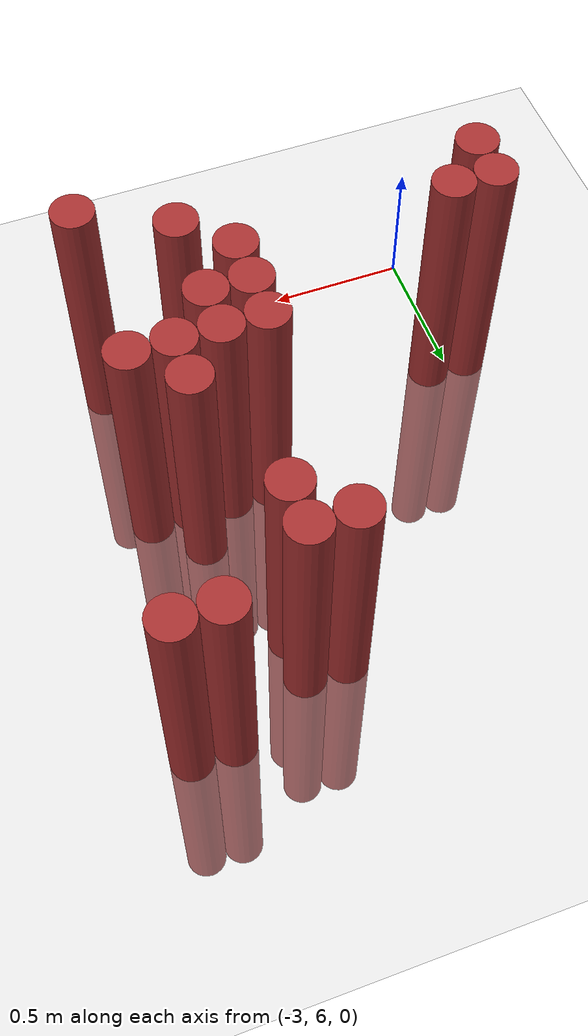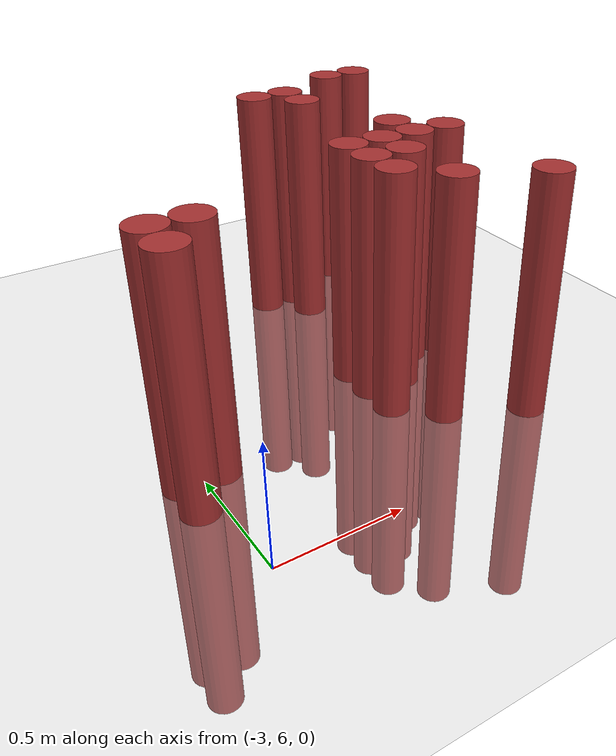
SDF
<sdf version="1.6">
 <world name="default">
  <model name="ground_plane">
   <static>1</static>
   <link name="link">
    <collision name="collision">
     <geometry><plane><normal>0 0 1</normal><size>100 100</size></plane></geometry>
     <surface><friction><ode><mu>100</mu><mu2>50</mu2></ode></friction></surface>
    </collision>
    <visual name="visual">
     <cast_shadows>0</cast_shadows>
     <geometry><plane><normal>0 0 1</normal><size>100 100</size></plane></geometry>
     <material>
      <script><uri>file://media/materials/scripts/gazebo.material</uri><name>Gazebo/Grey</name></script>
     </material>
    </visual>
   </link>
  </model>
  <model name="unit_cylinder_149">
   <static>1</static>
   <pose>-3.075000 6.375000 0.000000 0.000000 0.000000 0.000000</pose>
   <link name="link">
    <inertial>
     <mass>1</mass>
     <inertia><ixx>0.145833</ixx><ixy>0</ixy><ixz>0</ixz><iyy>0.145833</iyy><iyz>0</iyz><izz>0.125</izz></inertia>
    </inertial>
    <collision name="collision">
     <geometry><cylinder><radius>0.075000</radius><length>2</length></cylinder></geometry>
    </collision>
    <visual name="visual">
     <geometry><cylinder><radius>0.075000</radius><length>2</length></cylinder></geometry>
     <material>
      <ambient>0.648000 0.192000 0.192000 1</ambient>
      <diffuse>0.648000 0.192000 0.192000 1</diffuse>
     </material>
     <material>
      <script><name>Gazebo/Grey</name><uri>file://media/materials/scripts/gazebo.material</uri></script>
     </material>
    </visual>
   </link>
  </model>
  <model name="unit_cylinder_150">
   <static>1</static>
   <pose>-3.075000 6.525000 0.000000 0.000000 0.000000 0.000000</pose>
   <link name="link">
    <inertial>
     <mass>1</mass>
     <inertia><ixx>0.145833</ixx><ixy>0</ixy><ixz>0</ixz><iyy>0.145833</iyy><iyz>0</iyz><izz>0.125</izz></inertia>
    </inertial>
    <collision name="collision">
     <geometry><cylinder><radius>0.075000</radius><length>2</length></cylinder></geometry>
    </collision>
    <visual name="visual">
     <geometry><cylinder><radius>0.075000</radius><length>2</length></cylinder></geometry>
     <material>
      <ambient>0.648000 0.192000 0.192000 1</ambient>
      <diffuse>0.648000 0.192000 0.192000 1</diffuse>
     </material>
     <material>
      <script><name>Gazebo/Grey</name><uri>file://media/materials/scripts/gazebo.material</uri></script>
     </material>
    </visual>
   </link>
  </model>
  <model name="unit_cylinder_151">
   <static>1</static>
   <pose>-2.925000 6.525000 0.000000 0.000000 0.000000 0.000000</pose>
   <link name="link">
    <inertial>
     <mass>1</mass>
     <inertia><ixx>0.145833</ixx><ixy>0</ixy><ixz>0</ixz><iyy>0.145833</iyy><iyz>0</iyz><izz>0.125</izz></inertia>
    </inertial>
    <collision name="collision">
     <geometry><cylinder><radius>0.075000</radius><length>2</length></cylinder></geometry>
    </collision>
    <visual name="visual">
     <geometry><cylinder><radius>0.075000</radius><length>2</length></cylinder></geometry>
     <material>
      <ambient>0.648000 0.192000 0.192000 1</ambient>
      <diffuse>0.648000 0.192000 0.192000 1</diffuse>
     </material>
     <material>
      <script><name>Gazebo/Grey</name><uri>file://media/materials/scripts/gazebo.material</uri></script>
     </material>
    </visual>
   </link>
  </model>
  <model name="unit_cylinder_153">
   <static>1</static>
   <pose>-2.175000 6.525000 0.000000 0.000000 0.000000 0.000000</pose>
   <link name="link">
    <inertial>
     <mass>1</mass>
     <inertia><ixx>0.145833</ixx><ixy>0</ixy><ixz>0</ixz><iyy>0.145833</iyy><iyz>0</iyz><izz>0.125</izz></inertia>
    </inertial>
    <collision name="collision">
     <geometry><cylinder><radius>0.075000</radius><length>2</length></cylinder></geometry>
    </collision>
    <visual name="visual">
     <geometry><cylinder><radius>0.075000</radius><length>2</length></cylinder></geometry>
     <material>
      <ambient>0.648000 0.192000 0.192000 1</ambient>
      <diffuse>0.648000 0.192000 0.192000 1</diffuse>
     </material>
     <material>
      <script><name>Gazebo/Grey</name><uri>file://media/materials/scripts/gazebo.material</uri></script>
     </material>
    </visual>
   </link>
  </model>
  <model name="unit_cylinder_154">
   <static>1</static>
   <pose>-2.175000 6.675000 0.000000 0.000000 0.000000 0.000000</pose>
   <link name="link">
    <inertial>
     <mass>1</mass>
     <inertia><ixx>0.145833</ixx><ixy>0</ixy><ixz>0</ixz><iyy>0.145833</iyy><iyz>0</iyz><izz>0.125</izz></inertia>
    </inertial>
    <collision name="collision">
     <geometry><cylinder><radius>0.075000</radius><length>2</length></cylinder></geometry>
    </collision>
    <visual name="visual">
     <geometry><cylinder><radius>0.075000</radius><length>2</length></cylinder></geometry>
     <material>
      <ambient>0.648000 0.192000 0.192000 1</ambient>
      <diffuse>0.648000 0.192000 0.192000 1</diffuse>
     </material>
     <material>
      <script><name>Gazebo/Grey</name><uri>file://media/materials/scripts/gazebo.material</uri></script>
     </material>
    </visual>
   </link>
  </model>
  <model name="unit_cylinder_155">
   <static>1</static>
   <pose>-2.175000 6.825000 0.000000 0.000000 0.000000 0.000000</pose>
   <link name="link">
    <inertial>
     <mass>1</mass>
     <inertia><ixx>0.145833</ixx><ixy>0</ixy><ixz>0</ixz><iyy>0.145833</iyy><iyz>0</iyz><izz>0.125</izz></inertia>
    </inertial>
    <collision name="collision">
     <geometry><cylinder><radius>0.075000</radius><length>2</length></cylinder></geometry>
    </collision>
    <visual name="visual">
     <geometry><cylinder><radius>0.075000</radius><length>2</length></cylinder></geometry>
     <material>
      <ambient>0.648000 0.192000 0.192000 1</ambient>
      <diffuse>0.648000 0.192000 0.192000 1</diffuse>
     </material>
     <material>
      <script><name>Gazebo/Grey</name><uri>file://media/materials/scripts/gazebo.material</uri></script>
     </material>
    </visual>
   </link>
  </model>
  <model name="unit_cylinder_156">
   <static>1</static>
   <pose>-2.175000 7.575000 0.000000 0.000000 0.000000 0.000000</pose>
   <link name="link">
    <inertial>
     <mass>1</mass>
     <inertia><ixx>0.145833</ixx><ixy>0</ixy><ixz>0</ixz><iyy>0.145833</iyy><iyz>0</iyz><izz>0.125</izz></inertia>
    </inertial>
    <collision name="collision">
     <geometry><cylinder><radius>0.075000</radius><length>2</length></cylinder></geometry>
    </collision>
    <visual name="visual">
     <geometry><cylinder><radius>0.075000</radius><length>2</length></cylinder></geometry>
     <material>
      <ambient>0.648000 0.192000 0.192000 1</ambient>
      <diffuse>0.648000 0.192000 0.192000 1</diffuse>
     </material>
     <material>
      <script><name>Gazebo/Grey</name><uri>file://media/materials/scripts/gazebo.material</uri></script>
     </material>
    </visual>
   </link>
  </model>
  <model name="unit_cylinder_163">
   <static>1</static>
   <pose>-2.025000 6.375000 0.000000 0.000000 0.000000 0.000000</pose>
   <link name="link">
    <inertial>
     <mass>1</mass>
     <inertia><ixx>0.145833</ixx><ixy>0</ixy><ixz>0</ixz><iyy>0.145833</iyy><iyz>0</iyz><izz>0.125</izz></inertia>
    </inertial>
    <collision name="collision">
     <geometry><cylinder><radius>0.075000</radius><length>2</length></cylinder></geometry>
    </collision>
    <visual name="visual">
     <geometry><cylinder><radius>0.075000</radius><length>2</length></cylinder></geometry>
     <material>
      <ambient>0.648000 0.192000 0.192000 1</ambient>
      <diffuse>0.648000 0.192000 0.192000 1</diffuse>
     </material>
     <material>
      <script><name>Gazebo/Grey</name><uri>file://media/materials/scripts/gazebo.material</uri></script>
     </material>
    </visual>
   </link>
  </model>
  <model name="unit_cylinder_164">
   <static>1</static>
   <pose>-2.025000 6.675000 0.000000 0.000000 0.000000 0.000000</pose>
   <link name="link">
    <inertial>
     <mass>1</mass>
     <inertia><ixx>0.145833</ixx><ixy>0</ixy><ixz>0</ixz><iyy>0.145833</iyy><iyz>0</iyz><izz>0.125</izz></inertia>
    </inertial>
    <collision name="collision">
     <geometry><cylinder><radius>0.075000</radius><length>2</length></cylinder></geometry>
    </collision>
    <visual name="visual">
     <geometry><cylinder><radius>0.075000</radius><length>2</length></cylinder></geometry>
     <material>
      <ambient>0.648000 0.192000 0.192000 1</ambient>
      <diffuse>0.648000 0.192000 0.192000 1</diffuse>
     </material>
     <material>
      <script><name>Gazebo/Grey</name><uri>file://media/materials/scripts/gazebo.material</uri></script>
     </material>
    </visual>
   </link>
  </model>
  <model name="unit_cylinder_165">
   <static>1</static>
   <pose>-2.025000 6.825000 0.000000 0.000000 0.000000 0.000000</pose>
   <link name="link">
    <inertial>
     <mass>1</mass>
     <inertia><ixx>0.145833</ixx><ixy>0</ixy><ixz>0</ixz><iyy>0.145833</iyy><iyz>0</iyz><izz>0.125</izz></inertia>
    </inertial>
    <collision name="collision">
     <geometry><cylinder><radius>0.075000</radius><length>2</length></cylinder></geometry>
    </collision>
    <visual name="visual">
     <geometry><cylinder><radius>0.075000</radius><length>2</length></cylinder></geometry>
     <material>
      <ambient>0.648000 0.192000 0.192000 1</ambient>
      <diffuse>0.648000 0.192000 0.192000 1</diffuse>
     </material>
     <material>
      <script><name>Gazebo/Grey</name><uri>file://media/materials/scripts/gazebo.material</uri></script>
     </material>
    </visual>
   </link>
  </model>
  <model name="unit_cylinder_166">
   <static>1</static>
   <pose>-2.025000 7.425000 0.000000 0.000000 0.000000 0.000000</pose>
   <link name="link">
    <inertial>
     <mass>1</mass>
     <inertia><ixx>0.145833</ixx><ixy>0</ixy><ixz>0</ixz><iyy>0.145833</iyy><iyz>0</iyz><izz>0.125</izz></inertia>
    </inertial>
    <collision name="collision">
     <geometry><cylinder><radius>0.075000</radius><length>2</length></cylinder></geometry>
    </collision>
    <visual name="visual">
     <geometry><cylinder><radius>0.075000</radius><length>2</length></cylinder></geometry>
     <material>
      <ambient>0.648000 0.192000 0.192000 1</ambient>
      <diffuse>0.648000 0.192000 0.192000 1</diffuse>
     </material>
     <material>
      <script><name>Gazebo/Grey</name><uri>file://media/materials/scripts/gazebo.material</uri></script>
     </material>
    </visual>
   </link>
  </model>
  <model name="unit_cylinder_167">
   <static>1</static>
   <pose>-2.025000 7.575000 0.000000 0.000000 0.000000 0.000000</pose>
   <link name="link">
    <inertial>
     <mass>1</mass>
     <inertia><ixx>0.145833</ixx><ixy>0</ixy><ixz>0</ixz><iyy>0.145833</iyy><iyz>0</iyz><izz>0.125</izz></inertia>
    </inertial>
    <collision name="collision">
     <geometry><cylinder><radius>0.075000</radius><length>2</length></cylinder></geometry>
    </collision>
    <visual name="visual">
     <geometry><cylinder><radius>0.075000</radius><length>2</length></cylinder></geometry>
     <material>
      <ambient>0.648000 0.192000 0.192000 1</ambient>
      <diffuse>0.648000 0.192000 0.192000 1</diffuse>
     </material>
     <material>
      <script><name>Gazebo/Grey</name><uri>file://media/materials/scripts/gazebo.material</uri></script>
     </material>
    </visual>
   </link>
  </model>
  <model name="unit_cylinder_174">
   <static>1</static>
   <pose>-1.875000 6.825000 0.000000 0.000000 0.000000 0.000000</pose>
   <link name="link">
    <inertial>
     <mass>1</mass>
     <inertia><ixx>0.145833</ixx><ixy>0</ixy><ixz>0</ixz><iyy>0.145833</iyy><iyz>0</iyz><izz>0.125</izz></inertia>
    </inertial>
    <collision name="collision">
     <geometry><cylinder><radius>0.075000</radius><length>2</length></cylinder></geometry>
    </collision>
    <visual name="visual">
     <geometry><cylinder><radius>0.075000</radius><length>2</length></cylinder></geometry>
     <material>
      <ambient>0.648000 0.192000 0.192000 1</ambient>
      <diffuse>0.648000 0.192000 0.192000 1</diffuse>
     </material>
     <material>
      <script><name>Gazebo/Grey</name><uri>file://media/materials/scripts/gazebo.material</uri></script>
     </material>
    </visual>
   </link>
  </model>
  <model name="unit_cylinder_175">
   <static>1</static>
   <pose>-1.875000 6.975000 0.000000 0.000000 0.000000 0.000000</pose>
   <link name="link">
    <inertial>
     <mass>1</mass>
     <inertia><ixx>0.145833</ixx><ixy>0</ixy><ixz>0</ixz><iyy>0.145833</iyy><iyz>0</iyz><izz>0.125</izz></inertia>
    </inertial>
    <collision name="collision">
     <geometry><cylinder><radius>0.075000</radius><length>2</length></cylinder></geometry>
    </collision>
    <visual name="visual">
     <geometry><cylinder><radius>0.075000</radius><length>2</length></cylinder></geometry>
     <material>
      <ambient>0.648000 0.192000 0.192000 1</ambient>
      <diffuse>0.648000 0.192000 0.192000 1</diffuse>
     </material>
     <material>
      <script><name>Gazebo/Grey</name><uri>file://media/materials/scripts/gazebo.material</uri></script>
     </material>
    </visual>
   </link>
  </model>
  <model name="unit_cylinder_183">
   <static>1</static>
   <pose>-1.725000 6.225000 0.000000 0.000000 0.000000 0.000000</pose>
   <link name="link">
    <inertial>
     <mass>1</mass>
     <inertia><ixx>0.145833</ixx><ixy>0</ixy><ixz>0</ixz><iyy>0.145833</iyy><iyz>0</iyz><izz>0.125</izz></inertia>
    </inertial>
    <collision name="collision">
     <geometry><cylinder><radius>0.075000</radius><length>2</length></cylinder></geometry>
    </collision>
    <visual name="visual">
     <geometry><cylinder><radius>0.075000</radius><length>2</length></cylinder></geometry>
     <material>
      <ambient>0.648000 0.192000 0.192000 1</ambient>
      <diffuse>0.648000 0.192000 0.192000 1</diffuse>
     </material>
     <material>
      <script><name>Gazebo/Grey</name><uri>file://media/materials/scripts/gazebo.material</uri></script>
     </material>
    </visual>
   </link>
  </model>
  <model name="unit_cylinder_184">
   <static>1</static>
   <pose>-1.725000 6.825000 0.000000 0.000000 0.000000 0.000000</pose>
   <link name="link">
    <inertial>
     <mass>1</mass>
     <inertia><ixx>0.145833</ixx><ixy>0</ixy><ixz>0</ixz><iyy>0.145833</iyy><iyz>0</iyz><izz>0.125</izz></inertia>
    </inertial>
    <collision name="collision">
     <geometry><cylinder><radius>0.075000</radius><length>2</length></cylinder></geometry>
    </collision>
    <visual name="visual">
     <geometry><cylinder><radius>0.075000</radius><length>2</length></cylinder></geometry>
     <material>
      <ambient>0.648000 0.192000 0.192000 1</ambient>
      <diffuse>0.648000 0.192000 0.192000 1</diffuse>
     </material>
     <material>
      <script><name>Gazebo/Grey</name><uri>file://media/materials/scripts/gazebo.material</uri></script>
     </material>
    </visual>
   </link>
  </model>
  <model name="unit_cylinder_185">
   <static>1</static>
   <pose>-1.725000 7.725000 0.000000 0.000000 0.000000 0.000000</pose>
   <link name="link">
    <inertial>
     <mass>1</mass>
     <inertia><ixx>0.145833</ixx><ixy>0</ixy><ixz>0</ixz><iyy>0.145833</iyy><iyz>0</iyz><izz>0.125</izz></inertia>
    </inertial>
    <collision name="collision">
     <geometry><cylinder><radius>0.075000</radius><length>2</length></cylinder></geometry>
    </collision>
    <visual name="visual">
     <geometry><cylinder><radius>0.075000</radius><length>2</length></cylinder></geometry>
     <material>
      <ambient>0.648000 0.192000 0.192000 1</ambient>
      <diffuse>0.648000 0.192000 0.192000 1</diffuse>
     </material>
     <material>
      <script><name>Gazebo/Grey</name><uri>file://media/materials/scripts/gazebo.material</uri></script>
     </material>
    </visual>
   </link>
  </model>
  <model name="unit_cylinder_193">
   <static>1</static>
   <pose>-1.575000 7.725000 0.000000 0.000000 0.000000 0.000000</pose>
   <link name="link">
    <inertial>
     <mass>1</mass>
     <inertia><ixx>0.145833</ixx><ixy>0</ixy><ixz>0</ixz><iyy>0.145833</iyy><iyz>0</iyz><izz>0.125</izz></inertia>
    </inertial>
    <collision name="collision">
     <geometry><cylinder><radius>0.075000</radius><length>2</length></cylinder></geometry>
    </collision>
    <visual name="visual">
     <geometry><cylinder><radius>0.075000</radius><length>2</length></cylinder></geometry>
     <material>
      <ambient>0.648000 0.192000 0.192000 1</ambient>
      <diffuse>0.648000 0.192000 0.192000 1</diffuse>
     </material>
     <material>
      <script><name>Gazebo/Grey</name><uri>file://media/materials/scripts/gazebo.material</uri></script>
     </material>
    </visual>
   </link>
  </model>
 </world>
</sdf>
